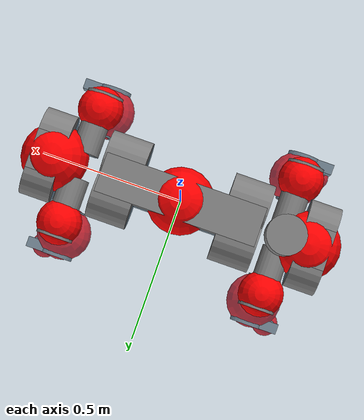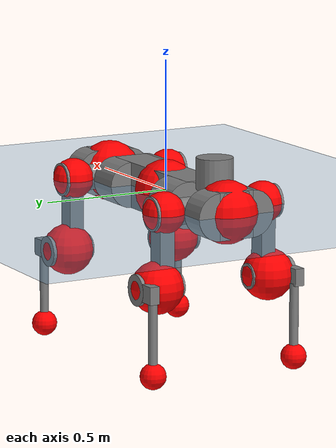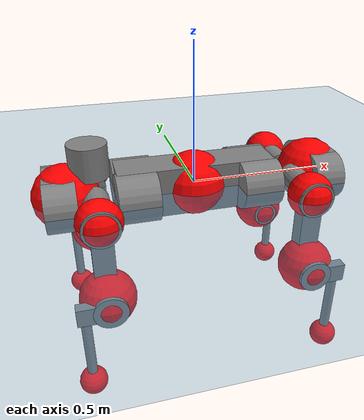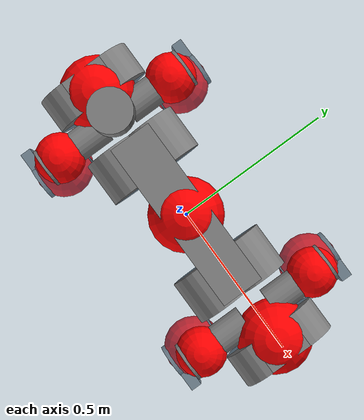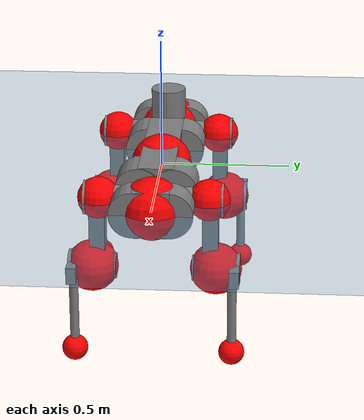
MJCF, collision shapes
<mujoco model="anymal_c">
  <compiler angle="radian" assetdir="assets" balanceinertia="true" inertiafromgeom="false"/>

  <option timestep="0.005" density="1.2" viscosity="2e-05"/>

  <size nkey="1"/>

  <visual>
    <quality shadowsize="8192"/>
    <map shadowclip="0.5"/>
  </visual>

  <default>
    <default class="/">
      <material specular="0" shininess="0.25"/>
      <geom contype="0" conaffinity="0" group="1" solref="-1000 -80"/>
      <site size="0.01 0.005 0.005" group="5"/>
      <general forcelimited="true" forcerange="-80 80" biastype="affine" gainprm="80" biasprm="0 -80 -2"/>
      <default class="anymal_c">
        <joint armature="0.01" damping="0.01" frictionloss="0.1"/>
        <default class="visual">
          <geom type="mesh" group="2"/>
          <default class="visual_zflip"/>
        </default>
        <default class="collision">
          <geom type="cylinder" group="3"/>
          <default class="foot">
            <geom size="0.03 0 0" type="sphere" condim="6" priority="1" friction="0.8 0.02 0.01" solimp="0.015 1 0.03"/>
          </default>
        </default>
      </default>
      <default class="reward_collision_sphere">
        <geom group="5" rgba="1 0 0 1"/>
      </default>
    </default>
  </default>

  <asset>
    <texture type="skybox" colorspace="auto" name="//unnamed_texture_0" builtin="gradient" rgb1="0.95 0.95 0.95" rgb2="0.95 0.95 0.95" width="100" height="600"/>
    <texture type="2d" colorspace="auto" name="texplane" builtin="checker" rgb1="0.345 0.575 0.748" rgb2="0.345 0.575 0.748" markrgb="1 1 1" width="512" height="512"/>
    <texture type="2d" colorspace="linear" name="base" file="base.png"/>
    <texture type="2d" colorspace="linear" name="top_shell" file="top_shell.png"/>
    <texture type="2d" colorspace="linear" name="bottom_shell" file="bottom_shell.png"/>
    <texture type="2d" colorspace="linear" name="remote" file="remote.png"/>
    <texture type="2d" colorspace="linear" name="hatch" file="hatch.png"/>
    <texture type="2d" colorspace="linear" name="handle" file="handle.png"/>
    <texture type="2d" colorspace="linear" name="face" file="face.png"/>
    <texture type="2d" colorspace="linear" name="battery" file="battery.png"/>
    <texture type="2d" colorspace="linear" name="lidar_cage" file="lidar_cage.png"/>
    <texture type="2d" colorspace="linear" name="depth_camera" file="depth_camera.png"/>
    <texture type="2d" colorspace="linear" name="wide_angle_camera" file="wide_angle_camera.png"/>
    <texture type="2d" colorspace="linear" name="lidar" file="lidar.png"/>
    <texture type="2d" colorspace="linear" name="drive" file="drive.png"/>
    <texture type="2d" colorspace="linear" name="hip_l" file="hip_l.png"/>
    <texture type="2d" colorspace="linear" name="shank_l" file="shank_l.png"/>
    <texture type="2d" colorspace="linear" name="foot" file="foot.png"/>
    <texture type="2d" colorspace="linear" name="thigh" file="thigh.png"/>
    <texture type="2d" colorspace="linear" name="shank_r" file="shank_r.png"/>
    <texture type="2d" colorspace="linear" name="hip_r" file="hip_r.png"/>
    <material name="MatPlane" class="/" texture="texplane" texuniform="true" texrepeat="2 2" specular="0.9" shininess="0.5"/>
    <material name="black_plastic" class="/" rgba="0.007 0.007 0.007 1"/>
    <material name="green" class="/" rgba="0.052 0.178 0.033 1"/>
    <material name="red" class="/" rgba="0.178 0.006 0.005 1"/>
    <material name="yellow" class="/" rgba="0.178 0.119 0.006 1"/>
    <material name="lwl" class="/" rgba="0.8 0.8 0.8 1"/>
    <material name="base" class="/" texture="base"/>
    <material name="top_shell" class="/" texture="top_shell"/>
    <material name="bottom_shell" class="/" texture="bottom_shell"/>
    <material name="hip_l" class="/" texture="hip_l"/>
    <material name="thigh" class="/" texture="thigh"/>
    <material name="shank_l" class="/" texture="shank_l"/>
    <material name="foot" class="/" texture="foot"/>
    <material name="hip_r" class="/" texture="hip_r"/>
    <material name="shank" class="/" texture="shank_r"/>
    <material name="hatch" class="/" texture="hatch"/>
    <material name="remote" class="/" texture="remote"/>
    <material name="handle" class="/" texture="handle"/>
    <material name="face" class="/" texture="face"/>
    <material name="depth_camera" class="/" texture="depth_camera"/>
    <material name="wide_angle_camera" class="/" texture="wide_angle_camera"/>
    <material name="battery" class="/" texture="battery"/>
    <material name="lidar_cage" class="/" texture="lidar_cage"/>
    <material name="lidar" class="/" texture="lidar"/>
    <material name="drive" class="/" texture="drive"/>
    <mesh name="base_0" class="/" file="base_0.obj"/>
    <mesh name="base_1" class="/" file="base_1.obj"/>
    <mesh name="base_2" class="/" file="base_2.obj"/>
    <mesh name="base_3" class="/" file="base_3.obj"/>
    <mesh name="base_4" class="/" file="base_4.obj"/>
    <mesh name="base_5" class="/" file="base_5.obj"/>
    <mesh name="top_shell" class="/" file="top_shell.obj"/>
    <mesh name="bottom_shell" class="/" file="bottom_shell.obj"/>
    <mesh name="remote" class="/" file="remote.obj"/>
    <mesh name="handle" class="/" file="handle.obj"/>
    <mesh name="face" class="/" file="face.obj"/>
    <mesh name="wide_angle_camera" class="/" file="wide_angle_camera.obj"/>
    <mesh name="depth_camera" class="/" file="depth_camera.obj"/>
    <mesh name="battery" class="/" file="battery.obj"/>
    <mesh name="lidar_cage" class="/" file="lidar_cage.obj"/>
    <mesh name="lidar" class="/" file="lidar.obj"/>
    <mesh name="drive" class="/" file="drive.obj"/>
    <mesh name="hip_l" class="/" file="hip_l.obj"/>
    <mesh name="thigh" class="/" file="thigh.obj"/>
    <mesh name="shank_l" class="/" file="shank_l.obj"/>
    <mesh name="foot" class="/" file="foot.obj"/>
    <mesh name="hip_r" class="/" file="hip_r.obj"/>
    <mesh name="hatch" class="/" file="hatch.obj"/>
    <mesh name="shank_r" class="/" file="shank_r.obj"/>
  </asset>

  <worldbody>
    <geom name="floor" class="/" size="100 100 0.125" type="plane" group="0" material="MatPlane"/>
    <light name="toplight_shadow" class="/" pos="0 0 5" dir="0.0990148 0.0990148 -0.990148" type="directional" ambient="0.04 0.04 0.04" diffuse="0.55 0.55 0.55" specular="0.12 0.12 0.12"/>
    <light name="toplight_fill" class="/" pos="0 0 5" dir="0.0990148 0.0990148 -0.990148" type="directional" castshadow="false" ambient="0.04 0.04 0.04" diffuse="0.3 0.3 0.3" specular="0.08 0.08 0.08"/>
    <body name="trunk" childclass="anymal_c" pos="8.92436e-05 -0.000142383 -0.000678951" quat="1 -1.82429e-05 0.000456526 0.000148265">
      <inertial pos="0.00052075 -0.000858172 0.0487596" quat="0.499744 0.499245 0.500239 0.500771" mass="18.5634" diaginertia="0.700339 0.521904 0.190892"/>
      <joint name="//unnamed_joint_0" type="free" armature="0" damping="0" frictionloss="0"/>
      <geom name="//unnamed_geom_1" class="visual" material="green" mesh="base_0"/>
      <geom name="//unnamed_geom_2" class="visual" material="yellow" mesh="base_1"/>
      <geom name="//unnamed_geom_3" class="visual" material="red" mesh="base_2"/>
      <geom name="//unnamed_geom_4" class="visual" material="black_plastic" mesh="base_3"/>
      <geom name="//unnamed_geom_5" class="visual" material="lwl" mesh="base_4"/>
      <geom name="//unnamed_geom_6" class="visual" material="base" mesh="base_5"/>
      <geom name="trunk_1" class="collision" size="0.286096 0.0690576 0.0887883" type="box"/>
      <geom name="trunk_2" class="collision" size="0.0887883 0.0715239" pos="0.221734 0.0675932 0" quat="0.707107 0 0.707107 0"/>
      <geom name="trunk_3" class="collision" size="0.0887883 0.0715239" pos="-0.221734 0.0675932 0" quat="0.707107 0 0.707107 0"/>
      <geom name="trunk_4" class="collision" size="0.0887883 0.0715239" pos="0.221734 -0.0675932 0" quat="0.707107 0 0.707107 0"/>
      <geom name="trunk_5" class="collision" size="0.0887883 0.0715239" pos="-0.221734 -0.0675932 0" quat="0.707107 0 0.707107 0"/>
      <geom name="//unnamed_geom_12" class="visual" material="top_shell" mesh="top_shell"/>
      <geom name="//unnamed_geom_13" class="visual" material="bottom_shell" mesh="bottom_shell"/>
      <geom name="//unnamed_geom_14" class="visual" material="remote" mesh="remote"/>
      <geom name="//unnamed_geom_15" class="visual" material="handle" mesh="handle"/>
      <geom name="//unnamed_geom_16" class="visual" pos="0.422569 0 0" quat="1 0 0 0" material="face" mesh="face"/>
      <geom name="trunk_6" class="collision" size="0.0542595 0.0690576 0.0887883" pos="0.478639 0 0" type="box"/>
      <geom name="//unnamed_geom_18" class="collision" size="0.0887883 0.0542595" pos="0.478639 0.0675932 0" quat="0.707107 0 0.707107 0"/>
      <geom name="//unnamed_geom_19" class="collision" size="0.0887883 0.0542595" pos="0.478639 -0.0675932 0" quat="0.707107 0 0.707107 0"/>
      <geom name="//unnamed_geom_20" class="visual" pos="0.470635 0 -0.0281146" quat="0.965926 0 0.258819 0" material="depth_camera" mesh="depth_camera"/>
      <geom name="//unnamed_geom_21" class="visual" pos="0.522986 0 0.0145887" material="wide_angle_camera" mesh="wide_angle_camera"/>
      <geom name="//unnamed_geom_22" class="visual_zflip" pos="-0.422569 0 0" quat="0 0 0 1" material="face" mesh="face"/>
      <geom name="trunk_7" class="collision" size="0.0542595 0.0690576 0.0887883" pos="-0.478639 0 0" quat="0 0 0 1" type="box"/>
      <geom name="//unnamed_geom_24" class="collision" size="0.0887883 0.0542595" pos="-0.478639 -0.0675932 0" quat="0 -0.707107 0 0.707107"/>
      <geom name="//unnamed_geom_25" class="collision" size="0.0887883 0.0542595" pos="-0.478639 0.0675932 0" quat="0 -0.707107 0 0.707107"/>
      <geom name="//unnamed_geom_26" class="visual" pos="-0.470635 0 -0.0281146" quat="0 -0.258819 0 0.965926" material="depth_camera" mesh="depth_camera"/>
      <geom name="//unnamed_geom_27" class="visual_zflip" pos="-0.522986 0 0.0145887" quat="0 0 0 1" material="wide_angle_camera" mesh="wide_angle_camera"/>
      <geom name="//unnamed_geom_28" class="visual" material="battery" mesh="battery"/>
      <geom name="//unnamed_geom_29" class="visual" pos="0 0.0731226 0.0286515" quat="0.683013 -0.183013 0.183013 0.683013" material="depth_camera" mesh="depth_camera"/>
      <geom name="//unnamed_geom_30" class="visual" pos="0 -0.0731226 0.0286515" quat="0.683013 0.183013 0.183013 -0.683013" material="depth_camera" mesh="depth_camera"/>
      <geom name="//unnamed_geom_31" class="visual" pos="-0.371086 0 0.0716277" quat="1 0 0 0" material="lidar_cage" mesh="lidar_cage"/>
      <geom name="trunk_8" class="collision" size="0.0690576 0.0591922" pos="-0.371086 0 0.130099"/>
      <geom name="//unnamed_geom_33" class="visual" pos="-0.371086 -2.11558e-05 0.138578" quat="0.707107 0 0 -0.707107" material="lidar" mesh="lidar"/>
      <geom name="//unnamed_geom_34" class="visual" pos="0.305738 0.100427 -1.53679e-10" quat="0.258819 0.965926 0 0" material="drive" mesh="drive"/>
      <geom name="//unnamed_geom_35" class="visual" pos="0.305738 -0.100427 1.53679e-10" quat="0.258819 -0.965926 0 0" material="drive" mesh="drive"/>
      <geom name="//unnamed_geom_36" class="visual" pos="-0.305738 0.100427 1.53679e-10" quat="0 0 0.965926 -0.258819" material="drive" mesh="drive"/>
      <geom name="//unnamed_geom_37" class="visual" pos="-0.305738 -0.100427 -1.53679e-10" quat="0 0 -0.965926 -0.258819" material="drive" mesh="drive"/>
      <geom name="//unnamed_geom_38" class="visual" pos="0.118258 0 0.0711404" quat="1 0 0 0" material="hatch" mesh="hatch"/>
      <geom name="//unnamed_geom_39" class="reward_collision_sphere" size="0.118384"/>
      <geom name="//unnamed_geom_40" class="reward_collision_sphere" size="0.118384" pos="0.45876 0 0"/>
      <geom name="//unnamed_geom_41" class="reward_collision_sphere" size="0.118384" pos="-0.45876 0 0"/>
      <site name="imu" pos="0.259372 0.00852941 0.0394834" size="0.00986536"/>
      <camera name="track" pos="0 -1.93123 0" quat="0.707107 0.707107 0 0" mode="trackcom"/>
      <camera name="ego_camera" pos="0.45876 0 -0.038981" quat="-0.5 -0.5 0.5 0.5"/>
      <body name="LF_HIP" pos="0.306315 0.100905 0.000608177" quat="0.258587 0.965988 -2.18087e-05 -6.78738e-05">
        <inertial pos="0.0577922 -0.0143379 -0.00818957" quat="-0.127613 0.709805 -0.135354 0.67939" mass="2.57811" diaginertia="0.00630422 0.00402223 0.0028224"/>
        <joint name="LF_HAA" pos="0 0 0" axis="0.999997 -0.000508519 0.00220786" range="-0.718457 0.471227" armature="0.00972912" damping="0.00638841" frictionloss="0.101199"/>
        <geom name="//unnamed_geom_42" class="visual" pos="0 -9.04025e-06 1.48485e-06" quat="0.258819 -0.965926 0 0" material="hip_l" mesh="hip_l"/>
        <geom name="//unnamed_geom_43" class="visual" pos="0.061066 -0.0732886 -0.0423791" quat="0.183013 -0.683013 0.683013 0.183013" material="drive" mesh="drive"/>
        <geom name="//unnamed_geom_44" class="collision" size="0.0493268 0.0690576" pos="0.061066 -0.0115486 -0.0067291" quat="-0.353553 -0.612372 0.612372 -0.353553"/>
        <body name="LF_THIGH" pos="0.0622926 -0.0692846 -0.0416419" quat="0.183186 -0.683197 0.682873 0.182673">
          <inertial pos="0.0313818 5.95441e-05 -0.240296" quat="0.993135 -0.00515191 -0.0808936 0.0843363" mass="2.95328" diaginertia="0.0331921 0.024526 0.0036493"/>
          <joint name="LF_HFE" pos="0 0 0" axis="0.999999 -0.00131877 0.000697612" stiffness="0.00409648" range="-3.13156 3.12654" armature="0.00987523" damping="0.00870018" frictionloss="0.102999"/>
          <geom name="//unnamed_geom_45" class="visual" pos="0.00107138 1.68825e-06 0" quat="0.707107 0 0 -0.707107" material="thigh" mesh="thigh"/>
          <geom name="//unnamed_geom_46" class="collision" size="0.0641249 0.0394615" pos="0.0407786 0 0" quat="0.5 0.5 -0.5 -0.5"/>
          <geom name="//unnamed_geom_47" class="collision" size="0.0369951 0.0295961 0.139411" pos="0.030584 0 -0.137714" quat="0.707107 0 0 -0.707107" type="box"/>
          <geom name="//unnamed_geom_48" class="visual" pos="0.102252 0 -0.27774" quat="1 0 0 0" material="drive" mesh="drive"/>
          <geom name="//unnamed_geom_49" class="collision" size="0.0493268 0.0690576" pos="0.0308898 0 -0.27774" quat="0.707107 0 0.707107 0"/>
          <geom name="//unnamed_geom_50" class="reward_collision_sphere" size="0.0789229" pos="0.0254867 0 0"/>
          <body name="LF_SHANK" pos="0.102143 0.00034939 -0.278386" quat="1 2.97684e-06 7.77916e-06 -1.37214e-05">
            <inertial pos="0.00533419 -0.0588951 -0.0776793" quat="0.992913 -0.116195 -0.00133599 -0.0249334" mass="0.563196" diaginertia="0.0110714 0.00773979 0.000981504"/>
            <joint name="LF_KFE" pos="0 0 0" axis="0.999994 -0.00269431 -0.00206854" range="-3.15246 3.14226" armature="0.00958327" damping="0.0112893" frictionloss="0.0986018"/>
            <geom name="//unnamed_geom_51" class="visual" pos="0.000349354 0.00186278 0" quat="0.707107 0 0 -0.707107" material="shank_l" mesh="shank_l"/>
            <geom name="LF_kfe_act" class="collision" size="0.0591922 0.0197307" pos="0.0203893 0 0" quat="0.5 0.5 -0.5 -0.5"/>
            <geom name="//unnamed_geom_53" class="collision" size="0.0567249 0.0332956 0.0187442" pos="0.0203893 -0.055522 0" quat="0.5 0.5 -0.5 -0.5" type="box"/>
            <geom name="//unnamed_geom_54" class="visual" pos="0.0133039 -0.0843257 -0.329361" quat="0.382683 0 0 -0.92388" material="foot" mesh="foot"/>
            <geom name="LF_calf" class="collision" size="0.0172644 0.13935" pos="0.013304 -0.084926 -0.16468" quat="0.707107 0 0 -0.707107"/>
            <geom name="LF_foot" class="foot" size="0.0297354" pos="0.013304 -0.084926 -0.307434" quat="0.707107 0 0 -0.707107"/>
            <geom name="//unnamed_geom_57" class="reward_collision_sphere" size="0.0986536" pos="-0.0509733 0 0"/>
            <geom name="//unnamed_geom_58" class="reward_collision_sphere" size="0.0493268" pos="0.013304 -0.084926 -0.307434"/>
            <site name="LF_foot" class="foot" pos="0.013304 -0.084926 -0.307434" quat="0.707107 0 0 -0.707107" size="0.00986536"/>
          </body>
        </body>
      </body>
      <body name="RF_HIP" pos="0.305144 -0.100798 0.000632796" quat="0.258821 -0.965925 1.85618e-06 2.5482e-06">
        <inertial pos="0.0585947 0.0133718 -0.00762445" quat="0.12808 0.678414 0.130653 0.711533" mass="2.68347" diaginertia="0.00647841 0.00421221 0.00291329"/>
        <joint name="RF_HAA" pos="0 0 0" axis="0.999999 0.000336214 0.0010392" range="-0.48259 0.724772" armature="0.010074" damping="0.00872164" frictionloss="0.0948658"/>
        <geom name="//unnamed_geom_59" class="visual" pos="0 9.04018e-06 1.48485e-06" quat="0.258819 0.965926 0 0" material="hip_r" mesh="hip_r"/>
        <geom name="//unnamed_geom_60" class="visual" pos="0.061066 0.0732886 -0.0423791" quat="0.183013 0.683013 0.683013 -0.183013" material="drive" mesh="drive"/>
        <geom name="//unnamed_geom_61" class="collision" size="0.0493268 0.0690576" pos="0.061066 0.0115486 -0.0067291" quat="-0.353553 0.612372 0.612372 0.353553"/>
        <body name="RF_THIGH" pos="0.060467 0.0708532 -0.041863" quat="0.183014 0.68307 0.682971 -0.182951">
          <inertial pos="0.0327177 0.000434527 -0.238256" quat="0.992894 -0.00245873 -0.0779012 0.0899323" mass="2.93724" diaginertia="0.0334241 0.0248445 0.00371312"/>
          <joint name="RF_HFE" pos="0 0 0" axis="1 -0.000298128 -0.000236419" stiffness="0.0071105" range="-3.15463 3.1307" armature="0.0101452" damping="0.0106699" frictionloss="0.0941283"/>
          <geom name="//unnamed_geom_62" class="visual" pos="0.00107138 1.68825e-06 0" quat="0.707107 0 0 -0.707107" material="thigh" mesh="thigh"/>
          <geom name="//unnamed_geom_63" class="collision" size="0.0641249 0.0394615" pos="0.0407786 0 0" quat="0.5 0.5 0.5 0.5"/>
          <geom name="//unnamed_geom_64" class="collision" size="0.0369951 0.0295961 0.139411" pos="0.030584 0 -0.137714" quat="0.707107 0 0 0.707107" type="box"/>
          <geom name="//unnamed_geom_65" class="visual" pos="0.102252 0 -0.27774" quat="1 0 0 0" material="drive" mesh="drive"/>
          <geom name="//unnamed_geom_66" class="collision" size="0.0493268 0.0690576" pos="0.0308898 0 -0.27774" quat="0.707107 0 0.707107 0"/>
          <geom name="//unnamed_geom_67" class="reward_collision_sphere" size="0.0789229" pos="0.0254867 0 0"/>
          <body name="RF_SHANK" pos="0.10288 0.000488025 -0.277542" quat="1 0.000388293 -8.96292e-05 1.08111e-05">
            <inertial pos="0.00586026 0.0592278 -0.0784389" quat="0.993077 0.114751 0.00626929 0.0243221" mass="0.559777" diaginertia="0.0110782 0.00785831 0.000986789"/>
            <joint name="RF_KFE" pos="0 0 0" axis="0.999993 0.00125268 0.00365674" range="-3.15679 3.15193" armature="0.00997659" damping="0.0140694" frictionloss="0.0938801"/>
            <geom name="//unnamed_geom_68" class="visual" pos="0.000349353 -0.00186277 0" quat="0.707107 0 0 0.707107" material="shank" mesh="shank_r"/>
            <geom name="RF_kfe_act" class="collision" size="0.0591922 0.0197307" pos="0.0203893 0 0" quat="0.5 0.5 0.5 0.5"/>
            <geom name="//unnamed_geom_70" class="collision" size="0.0567249 0.0332956 0.0187442" pos="0.0203893 0.055522 0" quat="0.5 0.5 0.5 0.5" type="box"/>
            <geom name="//unnamed_geom_71" class="visual" pos="0.0133041 0.0843257 -0.329361" quat="0.382683 0 0 0.92388" material="foot" mesh="foot"/>
            <geom name="RF_calf" class="collision" size="0.0172644 0.13935" pos="0.013304 0.084926 -0.16468" quat="0.707107 0 0 0.707107"/>
            <geom name="RF_foot" class="foot" size="0.0284026" pos="0.013304 0.084926 -0.307434" quat="0.707107 0 0 0.707107"/>
            <geom name="//unnamed_geom_74" class="reward_collision_sphere" size="0.0986536" pos="-0.0509733 0 0"/>
            <geom name="//unnamed_geom_75" class="reward_collision_sphere" size="0.0493268" pos="0.013304 0.084926 -0.307434"/>
            <site name="RF_foot" class="foot" pos="0.013304 0.084926 -0.307434" quat="0.707107 0 0 0.707107" size="0.00986536"/>
          </body>
        </body>
      </body>
      <body name="LH_HIP" pos="-0.304206 0.101028 -0.000163976" quat="-0.00014488 2.54415e-05 0.965891 -0.258949">
        <inertial pos="0.0578888 0.0140683 -0.00955514" quat="0.134527 0.678906 0.128409 0.710282" mass="2.71454" diaginertia="0.00670979 0.00418648 0.00297258"/>
        <joint name="LH_HAA" pos="0 0 0" axis="0.999995 -0.00283294 -0.00153534" stiffness="0.000826576" range="-0.491405 0.706718" armature="0.00969466" damping="0.00195382" frictionloss="0.098968"/>
        <geom name="//unnamed_geom_76" class="visual" pos="0 9.04018e-06 1.48485e-06" quat="-0.258819 -0.965926 0 0" material="hip_r" mesh="hip_r"/>
        <geom name="//unnamed_geom_77" class="visual" pos="0.061066 0.0732886 -0.0423791" quat="0.183013 0.683013 0.683013 -0.183013" material="drive" mesh="drive"/>
        <geom name="//unnamed_geom_78" class="collision" size="0.0493268 0.0690576" pos="0.061066 0.0115486 -0.0067291" quat="-0.353553 0.612372 0.612372 0.353553"/>
        <body name="LH_THIGH" pos="0.06042 0.0712361 -0.0418512" quat="0.183056 0.682811 0.683103 -0.183384">
          <inertial pos="0.0296945 -0.000643193 -0.240609" quat="0.992824 -0.00464222 -0.0806264 0.0881949" mass="2.99341" diaginertia="0.0327627 0.0250835 0.00365739"/>
          <joint name="LH_HFE" pos="0 0 0" axis="0.999999 -0.00102103 -0.00019281" range="-3.12281 3.15054" armature="0.0100341" damping="0.00884592" frictionloss="0.0990395"/>
          <geom name="//unnamed_geom_79" class="visual" pos="0.00107138 1.68825e-06 0" quat="0.707107 0 0 -0.707107" material="thigh" mesh="thigh"/>
          <geom name="//unnamed_geom_80" class="collision" size="0.0641249 0.0394615" pos="0.0407786 0 0" quat="0.5 0.5 -0.5 -0.5"/>
          <geom name="//unnamed_geom_81" class="collision" size="0.0369951 0.0295961 0.139411" pos="0.030584 0 -0.137714" quat="0.707107 0 0 -0.707107" type="box"/>
          <geom name="//unnamed_geom_82" class="visual" pos="0.102252 0 -0.27774" quat="1 0 0 0" material="drive" mesh="drive"/>
          <geom name="//unnamed_geom_83" class="collision" size="0.0493268 0.0690576" pos="0.0308898 0 -0.27774" quat="0.707107 0 0.707107 0"/>
          <geom name="//unnamed_geom_84" class="reward_collision_sphere" size="0.0789229" pos="0.0254867 0 0"/>
          <body name="LH_SHANK" pos="0.102848 -0.00111423 -0.27706" quat="1 0.000111644 -2.19936e-05 3.80852e-06">
            <inertial pos="0.00462341 0.0597729 -0.0780208" quat="0.993128 0.114144 0.00186938 0.0257918" mass="0.577582" diaginertia="0.0115197 0.00799741 0.00100088"/>
            <joint name="LH_KFE" pos="0 0 0" axis="0.999992 -0.00152738 0.00363589" range="-3.13457 3.14876" armature="0.0104359" damping="0.0127803" frictionloss="0.0968567"/>
            <geom name="//unnamed_geom_85" class="visual" pos="0.000349353 -0.00186277 0" quat="-0.707107 0 0 -0.707107" material="shank" mesh="shank_r"/>
            <geom name="LH_kfe_act" class="collision" size="0.0591922 0.0197307" pos="0.0203893 0 0" quat="0.5 0.5 -0.5 -0.5"/>
            <geom name="//unnamed_geom_87" class="collision" size="0.0567249 0.0332956 0.0187442" pos="0.0203893 0.055522 0" quat="0.5 0.5 -0.5 -0.5" type="box"/>
            <geom name="//unnamed_geom_88" class="visual" pos="0.0133041 0.0843257 -0.329361" quat="-0.382683 0 0 -0.92388" material="foot" mesh="foot"/>
            <geom name="LH_calf" class="collision" size="0.0172644 0.13935" pos="0.013304 0.084926 -0.16468" quat="0.707107 0 0 -0.707107"/>
            <geom name="LH_foot" class="foot" size="0.0293762" pos="0.013304 0.084926 -0.307434" quat="0.707107 0 0 -0.707107"/>
            <geom name="//unnamed_geom_91" class="reward_collision_sphere" size="0.0986536" pos="-0.0509733 0 0"/>
            <geom name="//unnamed_geom_92" class="reward_collision_sphere" size="0.0493268" pos="0.013304 0.084926 -0.307434"/>
            <site name="LH_foot" class="foot" pos="0.013304 0.084926 -0.307434" quat="0.707107 0 0 -0.707107" size="0.00986536"/>
          </body>
        </body>
      </body>
      <body name="RH_HIP" pos="-0.303891 -0.100108 -0.000461065" quat="5.07085e-05 -6.82117e-05 -0.96592 -0.258842">
        <inertial pos="0.0585594 -0.015785 -0.00972485" quat="-0.134811 0.71192 -0.139628 0.674908" mass="2.62475" diaginertia="0.00629936 0.00404146 0.00283184"/>
        <joint name="RH_HAA" pos="0 0 0" axis="0.999977 0.00411231 -0.0053511" range="-0.741929 0.473773" armature="0.010289" damping="0.0139744" frictionloss="0.0990683"/>
        <geom name="//unnamed_geom_93" class="visual" pos="0 -9.04025e-06 1.48485e-06" quat="-0.258819 0.965926 0 0" material="hip_l" mesh="hip_l"/>
        <geom name="//unnamed_geom_94" class="visual" pos="0.061066 -0.0732886 -0.0423791" quat="-0.183013 0.683013 -0.683013 -0.183013" material="drive" mesh="drive"/>
        <geom name="//unnamed_geom_95" class="collision" size="0.0493268 0.0690576" pos="0.061066 -0.0115486 -0.0067291" quat="0.353553 0.612372 -0.612372 0.353553"/>
        <body name="RH_THIGH" pos="0.0624087 -0.070913 -0.0421654" quat="-0.182895 0.682972 -0.683086 -0.183008">
          <inertial pos="0.0313618 -0.0008574 -0.239229" quat="0.993231 -0.00545891 -0.080579 0.0834787" mass="2.9765" diaginertia="0.033616 0.0252579 0.00368561"/>
          <joint name="RH_HFE" pos="0 0 0" axis="0.999999 0.00132241 6.72324e-05" range="-3.15574 3.14756" armature="0.00963426" damping="0.00357132" frictionloss="0.0979691"/>
          <geom name="//unnamed_geom_96" class="visual" pos="0.00107138 1.68825e-06 0" quat="0.707107 0 0 -0.707107" material="thigh" mesh="thigh"/>
          <geom name="//unnamed_geom_97" class="collision" size="0.0641249 0.0394615" pos="0.0407786 0 0" quat="0.5 0.5 0.5 0.5"/>
          <geom name="//unnamed_geom_98" class="collision" size="0.0369951 0.0295961 0.139411" pos="0.030584 0 -0.137714" quat="0.707107 0 0 0.707107" type="box"/>
          <geom name="//unnamed_geom_99" class="visual" pos="0.102252 0 -0.27774" quat="1 0 0 0" material="drive" mesh="drive"/>
          <geom name="//unnamed_geom_100" class="collision" size="0.0493268 0.0690576" pos="0.0308898 0 -0.27774" quat="0.707107 0 0.707107 0"/>
          <geom name="//unnamed_geom_101" class="reward_collision_sphere" size="0.0789229" pos="0.0254867 0 0"/>
          <body name="RH_SHANK" pos="0.102291 0.000893304 -0.277817" quat="1 0.000281074 -0.000307431 0.000275799">
            <inertial pos="0.0059719 -0.0581078 -0.0788281" quat="0.992934 -0.115903 -0.00104326 -0.0254343" mass="0.570425" diaginertia="0.0113616 0.00775504 0.000993837"/>
            <joint name="RH_KFE" pos="0 0 0" axis="1 0.000357833 -0.000605815" stiffness="0.000834091" range="-3.1256 3.15328" armature="0.00995994" damping="0.0140087" frictionloss="0.0939244"/>
            <geom name="//unnamed_geom_102" class="visual" pos="0.000349354 0.00186278 0" quat="0.707107 0 0 -0.707107" material="shank_l" mesh="shank_l"/>
            <geom name="RH_kfe_act" class="collision" size="0.0591922 0.0197307" pos="0.0203893 0 0" quat="0.5 0.5 0.5 0.5"/>
            <geom name="//unnamed_geom_104" class="collision" size="0.0567249 0.0332956 0.0187442" pos="0.0203893 -0.055522 0" quat="0.5 0.5 0.5 0.5" type="box"/>
            <geom name="//unnamed_geom_105" class="visual" pos="0.0133039 -0.0843257 -0.329361" quat="0.382683 0 0 -0.92388" material="foot" mesh="foot"/>
            <geom name="RH_calf" class="collision" size="0.0172644 0.13935" pos="0.013304 -0.084926 -0.16468" quat="0.707107 0 0 0.707107"/>
            <geom name="RH_foot" class="foot" size="0.0285561" pos="0.013304 -0.084926 -0.307434" quat="0.707107 0 0 0.707107"/>
            <geom name="//unnamed_geom_108" class="reward_collision_sphere" size="0.0986536" pos="-0.0509733 0 0"/>
            <geom name="//unnamed_geom_109" class="reward_collision_sphere" size="0.0493268" pos="0.013304 -0.084926 -0.307434"/>
            <site name="RH_foot" class="foot" pos="0.013304 -0.084926 -0.307434" quat="0.707107 0 0 0.707107" size="0.00986536"/>
          </body>
        </body>
      </body>
    </body>
  </worldbody>

  <contact>
    <pair class="/" geom1="floor" geom2="LF_foot" name="//unnamed_contact_0"/>
    <pair class="/" geom1="floor" geom2="RF_foot" name="//unnamed_contact_1"/>
    <pair class="/" geom1="floor" geom2="LH_foot" name="//unnamed_contact_2"/>
    <pair class="/" geom1="floor" geom2="RH_foot" name="//unnamed_contact_3"/>
  </contact>

  <actuator>
    <general name="LF_HAA" class="/" joint="LF_HAA" forcerange="-79.9529 79.9529" gainprm="81.3001" biasprm="0 -81.3001 -1.9284"/>
    <general name="LF_HFE" class="/" joint="LF_HFE" forcerange="-75.1927 75.1927" gainprm="81.3001" biasprm="0 -81.3001 -1.9284"/>
    <general name="LF_KFE" class="/" joint="LF_KFE" forcerange="-80.5773 80.5773" gainprm="81.3001" biasprm="0 -81.3001 -1.9284"/>
    <general name="RF_HAA" class="/" joint="RF_HAA" forcerange="-78.8513 78.8513" gainprm="81.3001" biasprm="0 -81.3001 -1.9284"/>
    <general name="RF_HFE" class="/" joint="RF_HFE" forcerange="-80.091 80.091" gainprm="81.3001" biasprm="0 -81.3001 -1.9284"/>
    <general name="RF_KFE" class="/" joint="RF_KFE" forcerange="-78.0319 78.0319" gainprm="81.3001" biasprm="0 -81.3001 -1.9284"/>
    <general name="LH_HAA" class="/" joint="LH_HAA" forcerange="-79.7529 79.7529" gainprm="81.3001" biasprm="0 -81.3001 -1.9284"/>
    <general name="LH_HFE" class="/" joint="LH_HFE" forcerange="-80.3572 80.3572" gainprm="81.3001" biasprm="0 -81.3001 -1.9284"/>
    <general name="LH_KFE" class="/" joint="LH_KFE" forcerange="-76.8839 76.8839" gainprm="81.3001" biasprm="0 -81.3001 -1.9284"/>
    <general name="RH_HAA" class="/" joint="RH_HAA" forcerange="-78.6801 78.6801" gainprm="81.3001" biasprm="0 -81.3001 -1.9284"/>
    <general name="RH_HFE" class="/" joint="RH_HFE" forcerange="-81.4012 81.4012" gainprm="81.3001" biasprm="0 -81.3001 -1.9284"/>
    <general name="RH_KFE" class="/" joint="RH_KFE" forcerange="-79.6648 79.6648" gainprm="81.3001" biasprm="0 -81.3001 -1.9284"/>
  </actuator>

  <sensor>
    <gyro site="imu" name="imu_angular_velocity"/>
    <velocimeter site="imu" name="imu_linear_velocity"/>
    <framelinvel objtype="site" objname="LF_foot" name="LF_foot_global_linear_velocity"/>
    <framelinvel objtype="site" objname="RF_foot" name="RF_foot_global_linear_velocity"/>
    <framelinvel objtype="site" objname="LH_foot" name="LH_foot_global_linear_velocity"/>
    <framelinvel objtype="site" objname="RH_foot" name="RH_foot_global_linear_velocity"/>
  </sensor>

  <keyframe>
    <key name="home" qpos="0 0 0.55 1 0 0 0 0 0.4 -0.8 0 -0.4 0.8 0 -0.4 0.8 0 0.4 -0.8"/>
  </keyframe>
</mujoco>
